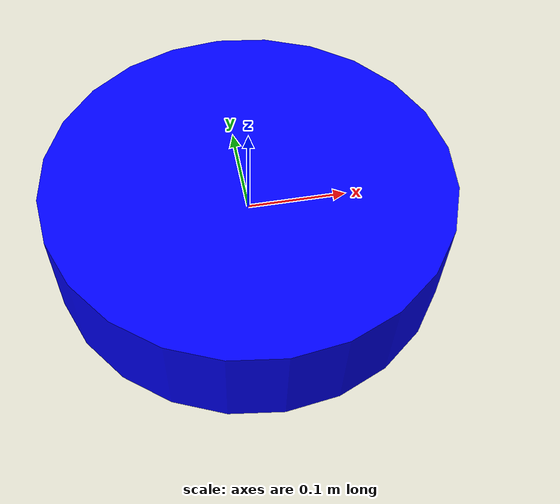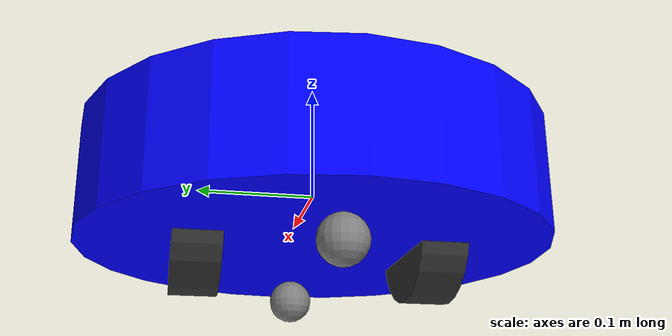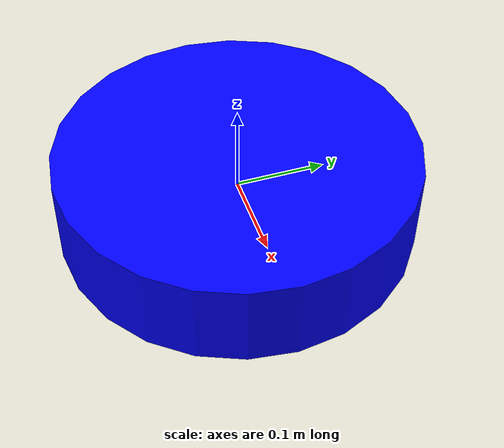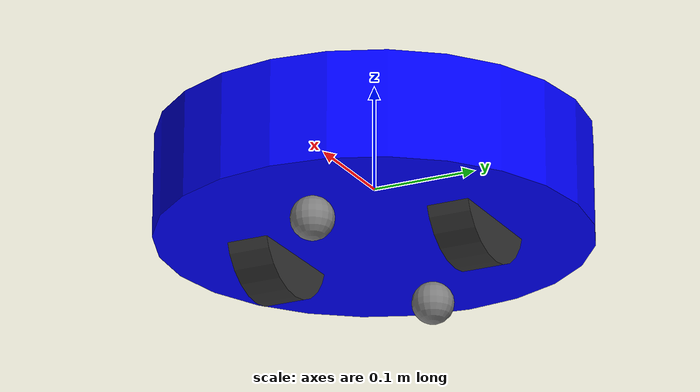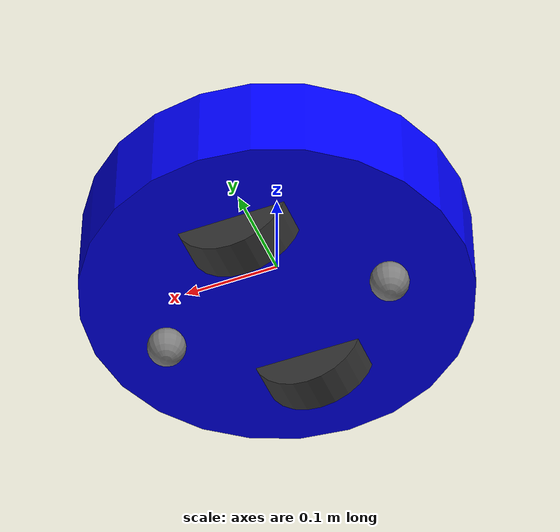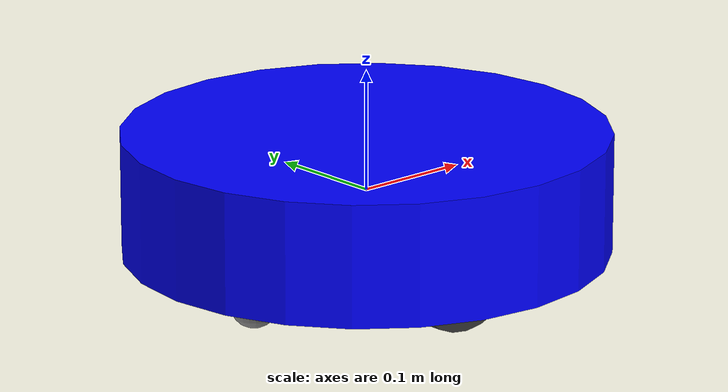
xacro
<?xml version="1.0"?>
<robot name="diff_drive_robot" xmlns:xacro="http://www.ros.org/wiki/xacro">

  <!-- ========== 机器人参数 ========== -->
  <xacro:property name="pi" value="3.14159265358979"/>
  <xacro:property name="base_length" value="0.3"/>
  <xacro:property name="base_width" value="0.2"/>
  <xacro:property name="base_height" value="0.1"/>
  <xacro:property name="base_mass" value="1.0"/>

  <xacro:property name="wheel_radius" value="0.06"/>
  <xacro:property name="wheel_length" value="0.04"/>
  <xacro:property name="wheel_mass" value="0.1"/>
  <xacro:property name="wheel_separation" value="0.2"/>

  <xacro:property name="caster_radius" value="0.02"/>
  <xacro:property name="caster_mass" value="0.05"/>

  <xacro:property name="body_radius" value="0.2"/>
  <xacro:property name="body_height" value="0.06"/>

  <!-- ========== 材质定义 ========== -->
  <material name="blue">
    <color rgba="0 0 1 1"/>
  </material>
  <material name="red">
    <color rgba="1 0 0 1"/>
  </material>
  <material name="gray">
    <color rgba="0.5 0.5 0.5 1"/>
  </material>
  <material name="dark_gray">
    <color rgba="0.2 0.2 0.2 1"/>
  </material>

  <!-- ========== 惯性宏 ========== -->
  <xacro:macro name="cylinder_inertia" params="mass radius length">
    <inertia ixx="${(1/12) * mass * (3*radius*radius + length*length)}"
             ixy="0" ixz="0"
             iyy="${(1/12) * mass * (3*radius*radius + length*length)}"
             iyz="0"
             izz="${(1/2) * mass * radius*radius}"/>
  </xacro:macro>

  <!-- ========== 基座 ========== -->
  <link name="base_link">
    <visual>
      <geometry>
        <cylinder radius="${body_radius}" length="${base_height}"/>
      </geometry>
      <origin xyz="0 0 0" rpy="0 0 0"/>
      <material name="blue"/>
    </visual>
    <collision>
      <geometry>
        <cylinder radius="${body_radius}" length="${base_height}"/>
      </geometry>
      <origin xyz="0 0 0" rpy="0 0 0"/>
    </collision>
    <inertial>
      <mass value="${base_mass}"/>
      <xacro:cylinder_inertia mass="${base_mass}" radius="${body_radius}" length="${base_height}"/>
    </inertial>
  </link>

  <!-- ========== 左轮 ========== -->
  <link name="left_wheel_link">
    <visual>
      <geometry>
        <cylinder radius="${wheel_radius}" length="${wheel_length}"/>
      </geometry>
      <origin xyz="0 0 0" rpy="${pi/2} 0 0"/>
      <material name="dark_gray"/>
    </visual>
    <collision>
      <geometry>
        <cylinder radius="${wheel_radius}" length="${wheel_length}"/>
      </geometry>
      <origin xyz="0 0 0" rpy="${pi/2} 0 0"/>
    </collision>
    <inertial>
      <mass value="${wheel_mass}"/>
      <xacro:cylinder_inertia mass="${wheel_mass}" radius="${wheel_radius}" length="${wheel_length}"/>
    </inertial>
  </link>

  <joint name="left_wheel_joint" type="continuous">
    <parent link="base_link"/>
    <child link="left_wheel_link"/>
    <origin xyz="0 ${wheel_separation/2} ${-wheel_radius/2}" rpy="0 0 0"/>
    <axis xyz="0 1 0"/>
    <limit effort="10" velocity="10"/>
  </joint>

  <!-- ========== 右轮 ========== -->
  <link name="right_wheel_link">
    <visual>
      <geometry>
        <cylinder radius="${wheel_radius}" length="${wheel_length}"/>
      </geometry>
      <origin xyz="0 0 0" rpy="${pi/2} 0 0"/>
      <material name="dark_gray"/>
    </visual>
    <collision>
      <geometry>
        <cylinder radius="${wheel_radius}" length="${wheel_length}"/>
      </geometry>
      <origin xyz="0 0 0" rpy="${pi/2} 0 0"/>
    </collision>
    <inertial>
      <mass value="${wheel_mass}"/>
      <xacro:cylinder_inertia mass="${wheel_mass}" radius="${wheel_radius}" length="${wheel_length}"/>
    </inertial>
  </link>

  <joint name="right_wheel_joint" type="continuous">
    <parent link="base_link"/>
    <child link="right_wheel_link"/>
    <origin xyz="0 ${-wheel_separation/2} ${-wheel_radius/2}" rpy="0 0 0"/>
    <axis xyz="0 1 0"/>
    <limit effort="10" velocity="10"/>
  </joint>

  <!-- ========== 万向轮 ========== -->
  <link name="front_caster_link">
    <visual>
      <geometry>
        <sphere radius="${caster_radius}"/>
      </geometry>
      <origin xyz="0 0 0" rpy="0 0 0"/>
      <material name="gray"/>
    </visual>
    <collision>
      <geometry>
        <sphere radius="${caster_radius}"/>
      </geometry>
      <origin xyz="0 0 0" rpy="0 0 0"/>
    </collision>
    <inertial>
      <mass value="${caster_mass}"/>
      <inertia ixx="0.0001" ixy="0" ixz="0" iyy="0.0001" iyz="0" izz="0.0001"/>
    </inertial>
  </link>

  <joint name="front_caster_joint" type="continuous">
    <parent link="base_link"/>
    <child link="front_caster_link"/>
    <origin xyz="${body_radius * 0.6} 0 ${-caster_radius - base_height/2}" rpy="0 0 0"/>
    <axis xyz="0 0 1"/>
  </joint>

  <link name="back_caster_link">
    <visual>
      <geometry>
        <sphere radius="${caster_radius}"/>
      </geometry>
      <origin xyz="0 0 0" rpy="0 0 0"/>
      <material name="gray"/>
    </visual>
    <collision>
      <geometry>
        <sphere radius="${caster_radius}"/>
      </geometry>
      <origin xyz="0 0 0" rpy="0 0 0"/>
    </collision>
    <inertial>
      <mass value="${caster_mass}"/>
      <inertia ixx="0.0001" ixy="0" ixz="0" iyy="0.0001" iyz="0" izz="0.0001"/>
    </inertial>
  </link>

  <joint name="back_caster_joint" type="continuous">
    <parent link="base_link"/>
    <child link="back_caster_link"/>
    <origin xyz="-${body_radius * 0.6} 0 ${-caster_radius - base_height/2}" rpy="0 0 0"/>
    <axis xyz="0 0 1"/>
  </joint>

  <!-- ========== Gazebo 差速驱动插件（修复版） ========== -->

  <gazebo>
    <plugin name="differential_drive_controller" filename="libgazebo_ros_diff_drive.so">
      <!-- 机器人命名空间 -->
      <robotNamespace>/</robotNamespace>

      <!-- 车轮关节名称（注意：这里使用下划线命名） -->
      <left_joint>left_wheel_joint</left_joint>
      <right_joint>right_wheel_joint</right_joint>

      <!-- 车轮参数 -->
      <wheel_separation>${wheel_separation}</wheel_separation>
      <wheel_diameter>${wheel_radius * 2}</wheel_diameter>

      <!-- 控制主题 -->
      <command_topic>cmd_vel</command_topic>
      <odometry_topic>odom</odometry_topic>
      <odometry_frame>odom</odometry_frame>
      <robot_base_frame>base_link</robot_base_frame>

      <!-- 里程计参数 -->
      <publish_odom>true</publish_odom>
      <publish_wheel_tf>true</publish_wheel_tf>
      <publish_wheel_joint_state>true</publish_wheel_joint_state>

      <!-- 更新率 -->
      <update_rate>50.0</update_rate>

      <!-- 始终运行 -->
      <always_on>true</always_on>
    </plugin>
  </gazebo>

</robot>
